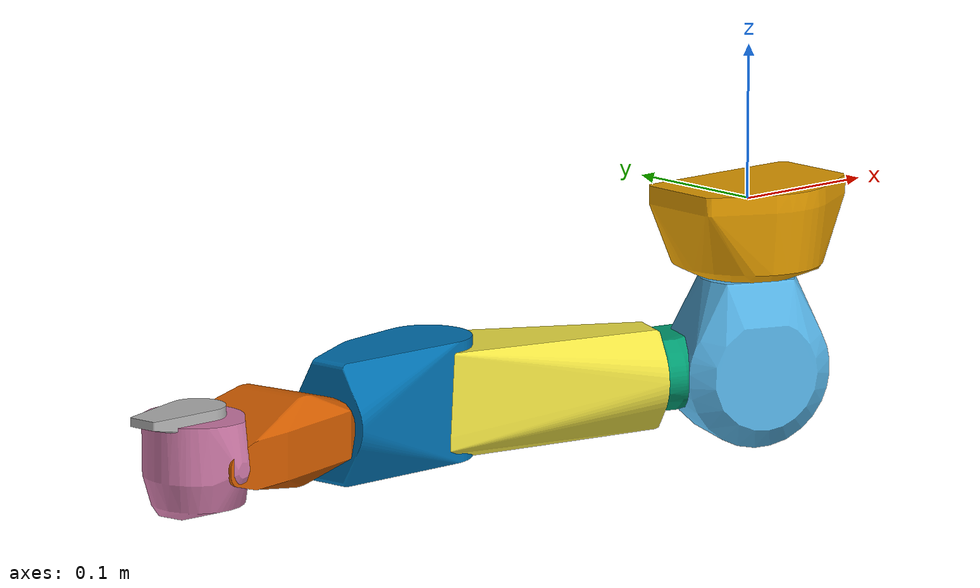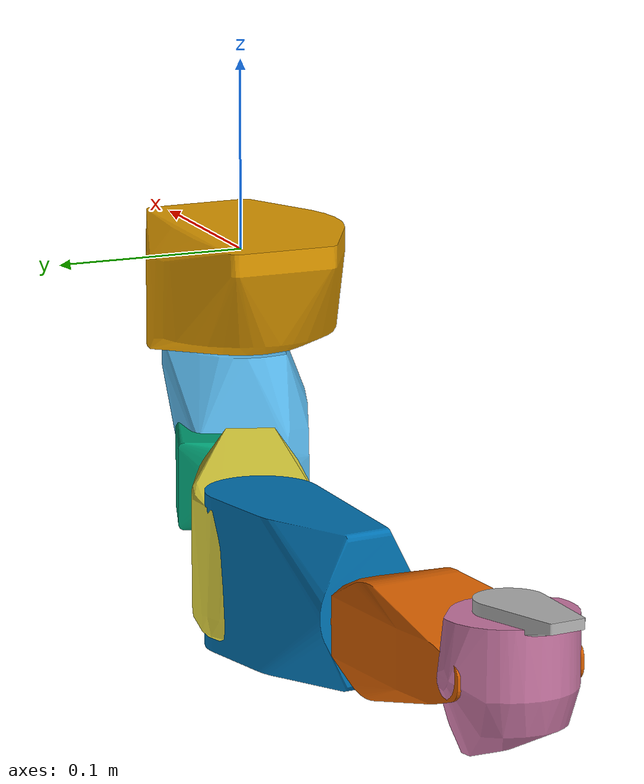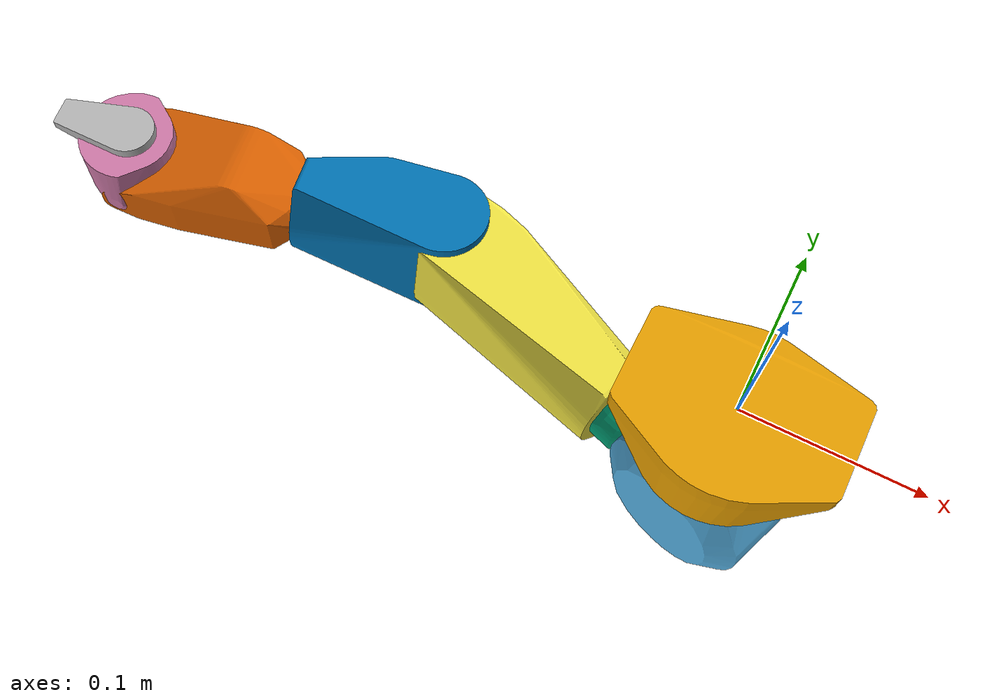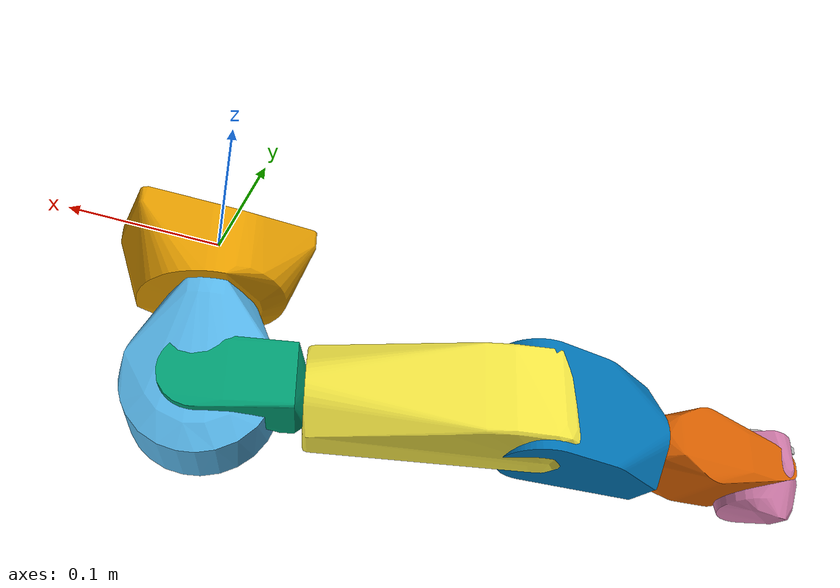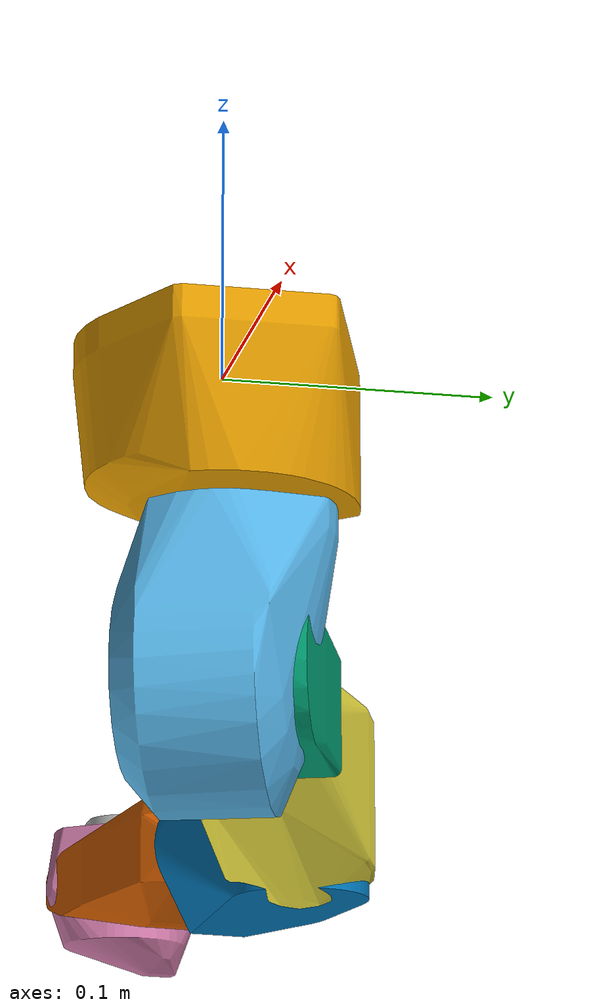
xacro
<robot xmlns:xacro="http://www.ros.org/wiki/xacro" name="_">
  <xacro:property name="joint_limits_file" value="${load_yaml('../config/joint_limits.yaml')}"/>
  <xacro:property name="joint_limits" value="${joint_limits_file['joint_limits']}"/>
  <xacro:property name="inertials_file" value="${load_yaml('../config/inertials.yaml')}"/>
  <xacro:property name="inertials" value="${inertials_file['inertials']}"/>
  <xacro:include filename="_.xacro"/>
  <xacro:_ prefix=""/>
</robot>

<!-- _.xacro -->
<robot xmlns:xacro="http://www.ros.org/wiki/xacro" name="_">
  <xacro:macro name="_" params="prefix:=''">
    <link name="${prefix}base_asm_1_j1_a_1">
      <inertial>
        <mass value="${inertials['base_asm_1_j1_a_1']['mass']}"/>
        <origin xyz="${inertials['base_asm_1_j1_a_1']['origin']['xyz']}" rpy="${inertials['base_asm_1_j1_a_1']['origin']['rpy']}"/>
        <inertia ixx="${inertials['base_asm_1_j1_a_1']['inertia']['ixx']}" iyy="${inertials['base_asm_1_j1_a_1']['inertia']['iyy']}" izz="${inertials['base_asm_1_j1_a_1']['inertia']['izz']}" ixy="${inertials['base_asm_1_j1_a_1']['inertia']['ixy']}" ixz="${inertials['base_asm_1_j1_a_1']['inertia']['ixz']}" iyz="${inertials['base_asm_1_j1_a_1']['inertia']['iyz']}"/>
      </inertial>
      <visual>
        <origin xyz="0 0 0" rpy="0 0 0"/>
        <geometry>
          <mesh filename="../meshes/base_asm_1_j1_a_1.glb" scale="0.001 0.001 0.001"/>
        </geometry>
      </visual>
      <collision>
        <origin xyz="0 0 0" rpy="0 0 0"/>
        <geometry>
          <mesh filename="../meshes/base_asm_1_j1_a_1_collision.stl" scale="0.001 0.001 0.001"/>
        </geometry>
      </collision>
    </link>
    <link name="${prefix}l1_asm_2_j1_c_1">
      <inertial>
        <mass value="${inertials['l1_asm_2_j1_c_1']['mass']}"/>
        <origin xyz="${inertials['l1_asm_2_j1_c_1']['origin']['xyz']}" rpy="${inertials['l1_asm_2_j1_c_1']['origin']['rpy']}"/>
        <inertia ixx="${inertials['l1_asm_2_j1_c_1']['inertia']['ixx']}" iyy="${inertials['l1_asm_2_j1_c_1']['inertia']['iyy']}" izz="${inertials['l1_asm_2_j1_c_1']['inertia']['izz']}" ixy="${inertials['l1_asm_2_j1_c_1']['inertia']['ixy']}" ixz="${inertials['l1_asm_2_j1_c_1']['inertia']['ixz']}" iyz="${inertials['l1_asm_2_j1_c_1']['inertia']['iyz']}"/>
      </inertial>
      <visual>
        <origin xyz="0 0 0" rpy="0 0 0"/>
        <geometry>
          <mesh filename="../meshes/l1_asm_2_j1_c_1.glb" scale="0.001 0.001 0.001"/>
        </geometry>
      </visual>
      <collision>
        <origin xyz="0 0 0" rpy="0 0 0"/>
        <geometry>
          <mesh filename="../meshes/l1_asm_2_j1_c_1_collision.stl" scale="0.001 0.001 0.001"/>
        </geometry>
      </collision>
    </link>
    <link name="${prefix}l2_asm_2_j2_a_1">
      <inertial>
        <mass value="${inertials['l2_asm_2_j2_a_1']['mass']}"/>
        <origin xyz="${inertials['l2_asm_2_j2_a_1']['origin']['xyz']}" rpy="${inertials['l2_asm_2_j2_a_1']['origin']['rpy']}"/>
        <inertia ixx="${inertials['l2_asm_2_j2_a_1']['inertia']['ixx']}" iyy="${inertials['l2_asm_2_j2_a_1']['inertia']['iyy']}" izz="${inertials['l2_asm_2_j2_a_1']['inertia']['izz']}" ixy="${inertials['l2_asm_2_j2_a_1']['inertia']['ixy']}" ixz="${inertials['l2_asm_2_j2_a_1']['inertia']['ixz']}" iyz="${inertials['l2_asm_2_j2_a_1']['inertia']['iyz']}"/>
      </inertial>
      <visual>
        <origin xyz="0 0 0" rpy="0 0 0"/>
        <geometry>
          <mesh filename="../meshes/l2_asm_2_j2_a_1.glb" scale="0.001 0.001 0.001"/>
        </geometry>
      </visual>
      <collision>
        <origin xyz="0 0 0" rpy="0 0 0"/>
        <geometry>
          <mesh filename="../meshes/l2_asm_2_j2_a_1_collision.stl" scale="0.001 0.001 0.001"/>
        </geometry>
      </collision>
    </link>
    <link name="${prefix}l3_asm_2_boss_extrude31_1">
      <inertial>
        <mass value="${inertials['l3_asm_2_boss_extrude31_1']['mass']}"/>
        <origin xyz="${inertials['l3_asm_2_boss_extrude31_1']['origin']['xyz']}" rpy="${inertials['l3_asm_2_boss_extrude31_1']['origin']['rpy']}"/>
        <inertia ixx="${inertials['l3_asm_2_boss_extrude31_1']['inertia']['ixx']}" iyy="${inertials['l3_asm_2_boss_extrude31_1']['inertia']['iyy']}" izz="${inertials['l3_asm_2_boss_extrude31_1']['inertia']['izz']}" ixy="${inertials['l3_asm_2_boss_extrude31_1']['inertia']['ixy']}" ixz="${inertials['l3_asm_2_boss_extrude31_1']['inertia']['ixz']}" iyz="${inertials['l3_asm_2_boss_extrude31_1']['inertia']['iyz']}"/>
      </inertial>
      <visual>
        <origin xyz="0 0 0" rpy="0 0 0"/>
        <geometry>
          <mesh filename="../meshes/l3_asm_2_boss_extrude31_1.glb" scale="0.001 0.001 0.001"/>
        </geometry>
      </visual>
      <collision>
        <origin xyz="0 0 0" rpy="0 0 0"/>
        <geometry>
          <mesh filename="../meshes/l3_asm_2_boss_extrude31_1_collision.stl" scale="0.001 0.001 0.001"/>
        </geometry>
      </collision>
    </link>
    <link name="${prefix}l4_asm_2_j4_c_1">
      <inertial>
        <mass value="${inertials['l4_asm_2_j4_c_1']['mass']}"/>
        <origin xyz="${inertials['l4_asm_2_j4_c_1']['origin']['xyz']}" rpy="${inertials['l4_asm_2_j4_c_1']['origin']['rpy']}"/>
        <inertia ixx="${inertials['l4_asm_2_j4_c_1']['inertia']['ixx']}" iyy="${inertials['l4_asm_2_j4_c_1']['inertia']['iyy']}" izz="${inertials['l4_asm_2_j4_c_1']['inertia']['izz']}" ixy="${inertials['l4_asm_2_j4_c_1']['inertia']['ixy']}" ixz="${inertials['l4_asm_2_j4_c_1']['inertia']['ixz']}" iyz="${inertials['l4_asm_2_j4_c_1']['inertia']['iyz']}"/>
      </inertial>
      <visual>
        <origin xyz="0 0 0" rpy="0 0 0"/>
        <geometry>
          <mesh filename="../meshes/l4_asm_2_j4_c_1.glb" scale="0.001 0.001 0.001"/>
        </geometry>
      </visual>
      <collision>
        <origin xyz="0 0 0" rpy="0 0 0"/>
        <geometry>
          <mesh filename="../meshes/l4_asm_2_j4_c_1_collision.stl" scale="0.001 0.001 0.001"/>
        </geometry>
      </collision>
    </link>
    <link name="${prefix}l5_right_asm_1_j5_a_1">
      <inertial>
        <mass value="${inertials['l5_right_asm_1_j5_a_1']['mass']}"/>
        <origin xyz="${inertials['l5_right_asm_1_j5_a_1']['origin']['xyz']}" rpy="${inertials['l5_right_asm_1_j5_a_1']['origin']['rpy']}"/>
        <inertia ixx="${inertials['l5_right_asm_1_j5_a_1']['inertia']['ixx']}" iyy="${inertials['l5_right_asm_1_j5_a_1']['inertia']['iyy']}" izz="${inertials['l5_right_asm_1_j5_a_1']['inertia']['izz']}" ixy="${inertials['l5_right_asm_1_j5_a_1']['inertia']['ixy']}" ixz="${inertials['l5_right_asm_1_j5_a_1']['inertia']['ixz']}" iyz="${inertials['l5_right_asm_1_j5_a_1']['inertia']['iyz']}"/>
      </inertial>
      <visual>
        <origin xyz="0 0 0" rpy="0 0 0"/>
        <geometry>
          <mesh filename="../meshes/l5_right_asm_1_j5_a_1.glb" scale="0.001 0.001 0.001"/>
        </geometry>
      </visual>
      <collision>
        <origin xyz="0 0 0" rpy="0 0 0"/>
        <geometry>
          <mesh filename="../meshes/l5_right_asm_1_j5_a_1_collision.stl" scale="0.001 0.001 0.001"/>
        </geometry>
      </collision>
    </link>
    <link name="${prefix}l6_urdf_2_j7_ab_1">
      <inertial>
        <mass value="${inertials['l6_urdf_2_j7_ab_1']['mass']}"/>
        <origin xyz="${inertials['l6_urdf_2_j7_ab_1']['origin']['xyz']}" rpy="${inertials['l6_urdf_2_j7_ab_1']['origin']['rpy']}"/>
        <inertia ixx="${inertials['l6_urdf_2_j7_ab_1']['inertia']['ixx']}" iyy="${inertials['l6_urdf_2_j7_ab_1']['inertia']['iyy']}" izz="${inertials['l6_urdf_2_j7_ab_1']['inertia']['izz']}" ixy="${inertials['l6_urdf_2_j7_ab_1']['inertia']['ixy']}" ixz="${inertials['l6_urdf_2_j7_ab_1']['inertia']['ixz']}" iyz="${inertials['l6_urdf_2_j7_ab_1']['inertia']['iyz']}"/>
      </inertial>
      <visual>
        <origin xyz="0 0 0" rpy="0 0 0"/>
        <geometry>
          <mesh filename="../meshes/l6_urdf_2_j7_ab_1.glb" scale="0.001 0.001 0.001"/>
        </geometry>
      </visual>
      <collision>
        <origin xyz="0 0 0" rpy="0 0 0"/>
        <geometry>
          <mesh filename="../meshes/l6_urdf_2_j7_ab_1_collision.stl" scale="0.001 0.001 0.001"/>
        </geometry>
      </collision>
    </link>
    <link name="${prefix}j8_a_1">
      <inertial>
        <mass value="${inertials['j8_a_1']['mass']}"/>
        <origin xyz="${inertials['j8_a_1']['origin']['xyz']}" rpy="${inertials['j8_a_1']['origin']['rpy']}"/>
        <inertia ixx="${inertials['j8_a_1']['inertia']['ixx']}" iyy="${inertials['j8_a_1']['inertia']['iyy']}" izz="${inertials['j8_a_1']['inertia']['izz']}" ixy="${inertials['j8_a_1']['inertia']['ixy']}" ixz="${inertials['j8_a_1']['inertia']['ixz']}" iyz="${inertials['j8_a_1']['inertia']['iyz']}"/>
      </inertial>
      <visual>
        <origin xyz="0 0 0" rpy="0 0 0"/>
        <geometry>
          <mesh filename="../meshes/j8_a_1.glb" scale="0.001 0.001 0.001"/>
        </geometry>
      </visual>
      <collision>
        <origin xyz="0 0 0" rpy="0 0 0"/>
        <geometry>
          <mesh filename="../meshes/j8_a_1_collision.stl" scale="0.001 0.001 0.001"/>
        </geometry>
      </collision>
    </link>
    <joint name="${prefix}right_j1" type="revolute">
      <origin xyz="0.0 0.0 -0.05049999999999999" rpy="3.141592653589793 0.0 0.0"/>
      <parent link="${prefix}base_asm_1_j1_a_1"/>
      <child link="${prefix}l1_asm_2_j1_c_1"/>
      <axis xyz="0 0 -1"/>
      <limit lower="${joint_limits['right_j1']['lower']}" upper="${joint_limits['right_j1']['upper']}" effort="${joint_limits['right_j1']['effort']}" velocity="${joint_limits['right_j1']['velocity']}"/>
      <dynamics damping="${joint_limits['right_j1']['damping']}" friction="${joint_limits['right_j1']['friction']}"/>
    </joint>
    <joint name="${prefix}right_j2" type="revolute">
      <origin xyz="0.009610769999999935 -0.026405360000000017 0.05999999999999994" rpy="1.5707963267948966 0.0 0.34906584721177414"/>
      <parent link="${prefix}l1_asm_2_j1_c_1"/>
      <child link="${prefix}l2_asm_2_j2_a_1"/>
      <axis xyz="0 0 -1"/>
      <limit lower="${joint_limits['right_j2']['lower']}" upper="${joint_limits['right_j2']['upper']}" effort="${joint_limits['right_j2']['effort']}" velocity="${joint_limits['right_j2']['velocity']}"/>
      <dynamics damping="${joint_limits['right_j2']['damping']}" friction="${joint_limits['right_j2']['friction']}"/>
    </joint>
    <joint name="${prefix}right_j3" type="revolute">
      <origin xyz="-0.06624999999999998 0.0 -0.030100000000000016" rpy="-1.5707963267948966 0.0 1.5707963267948966"/>
      <parent link="${prefix}l2_asm_2_j2_a_1"/>
      <child link="${prefix}l3_asm_2_boss_extrude31_1"/>
      <axis xyz="0 0 -1"/>
      <limit lower="${joint_limits['right_j3']['lower']}" upper="${joint_limits['right_j3']['upper']}" effort="${joint_limits['right_j3']['effort']}" velocity="${joint_limits['right_j3']['velocity']}"/>
      <dynamics damping="${joint_limits['right_j3']['damping']}" friction="${joint_limits['right_j3']['friction']}"/>
    </joint>
    <joint name="${prefix}right_j4" type="revolute">
      <origin xyz="-0.03154999999999997 1.866776233594436e-09 0.15374999653878826" rpy="1.5707963267948966 -0.6108652356094701 -1.5707963267948966"/>
      <parent link="${prefix}l3_asm_2_boss_extrude31_1"/>
      <child link="${prefix}l4_asm_2_j4_c_1"/>
      <axis xyz="0 0 -1"/>
      <limit lower="${joint_limits['right_j4']['lower']}" upper="${joint_limits['right_j4']['upper']}" effort="${joint_limits['right_j4']['effort']}" velocity="${joint_limits['right_j4']['velocity']}"/>
      <dynamics damping="${joint_limits['right_j4']['damping']}" friction="${joint_limits['right_j4']['friction']}"/>
    </joint>
    <joint name="${prefix}right_j5" type="revolute">
      <origin xyz="0.008323379853692026 0.09513659784155301 -0.03149999999999997" rpy="1.4835298564526367 -1.5707963267948966 0.0"/>
      <parent link="${prefix}l4_asm_2_j4_c_1"/>
      <child link="${prefix}l5_right_asm_1_j5_a_1"/>
      <axis xyz="0 0 -1"/>
      <limit lower="${joint_limits['right_j5']['lower']}" upper="${joint_limits['right_j5']['upper']}" effort="${joint_limits['right_j5']['effort']}" velocity="${joint_limits['right_j5']['velocity']}"/>
      <dynamics damping="${joint_limits['right_j5']['damping']}" friction="${joint_limits['right_j5']['friction']}"/>
    </joint>
    <joint name="${prefix}right_j6" type="revolute">
      <origin xyz="0.0 0.037500006218534276 -0.12049999398749367" rpy="-1.5707963267948966 -1.5707963267948966 0.0"/>
      <parent link="${prefix}l5_right_asm_1_j5_a_1"/>
      <child link="${prefix}l6_urdf_2_j7_ab_1"/>
      <axis xyz="0 0 -1"/>
      <limit lower="${joint_limits['right_j6']['lower']}" upper="${joint_limits['right_j6']['upper']}" effort="${joint_limits['right_j6']['effort']}" velocity="${joint_limits['right_j6']['velocity']}"/>
      <dynamics damping="${joint_limits['right_j6']['damping']}" friction="${joint_limits['right_j6']['friction']}"/>
    </joint>
    <joint name="${prefix}right_j7" type="revolute">
      <origin xyz="-5.301116517975046e-09 0.020499999999999963 -0.03750000809348755" rpy="1.5707963267948966 -1.5707963267948966 0.0"/>
      <parent link="${prefix}l6_urdf_2_j7_ab_1"/>
      <child link="${prefix}j8_a_1"/>
      <axis xyz="0 0 -1"/>
      <limit lower="${joint_limits['right_j7']['lower']}" upper="${joint_limits['right_j7']['upper']}" effort="${joint_limits['right_j7']['effort']}" velocity="${joint_limits['right_j7']['velocity']}"/>
      <dynamics damping="${joint_limits['right_j7']['damping']}" friction="${joint_limits['right_j7']['friction']}"/>
    </joint>
  </xacro:macro>
</robot>
